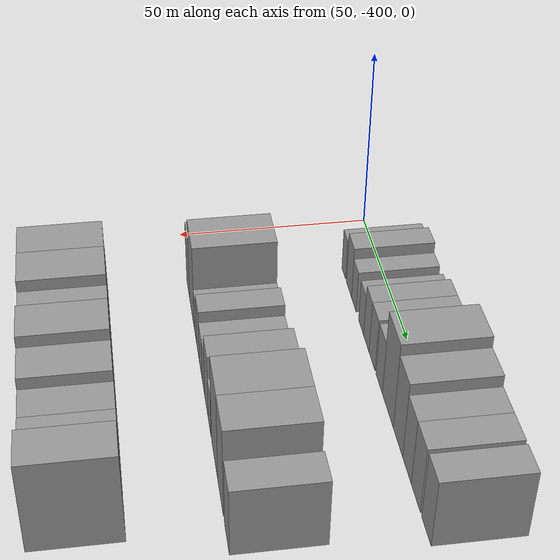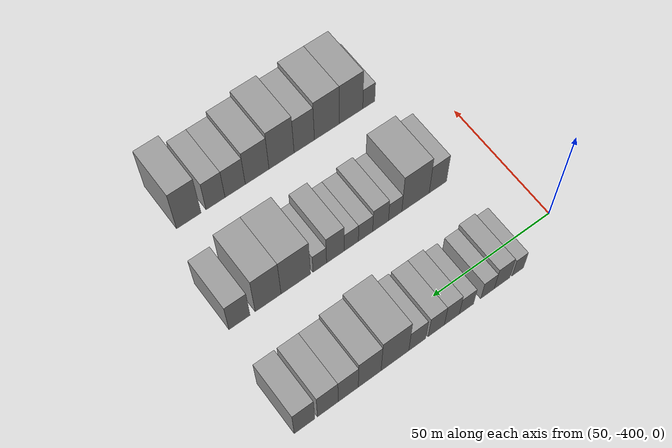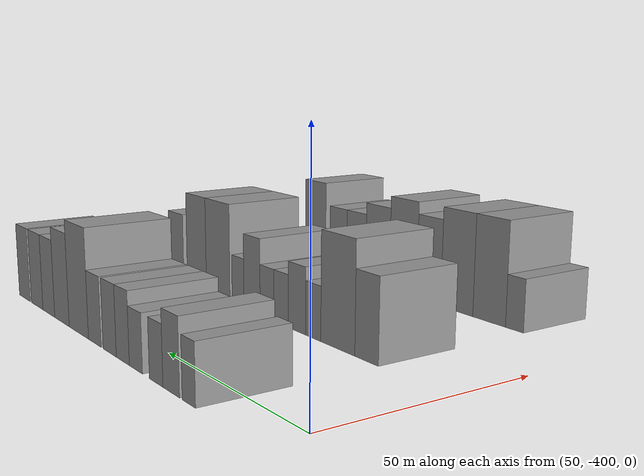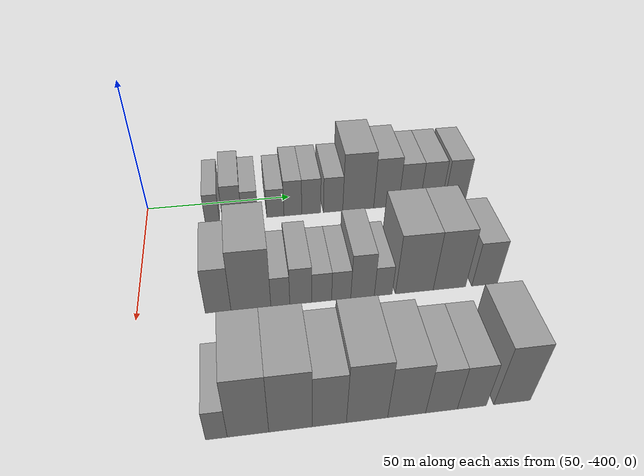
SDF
<sdf version="1.6">
 <world name="default">
  <model name="building_1">
   <static>1</static>
   <pose>50.0000 -377.5273 0 0.000000 0.000000 0.000000</pose>
   <link name="link">
    <pose>0 0 6.00 0 0 0</pose>
    <collision name="collision"><geometry><box><size>20.0000 4.9454 12.0000</size></box></geometry></collision>
    <visual name="visual">
     <cast_shadows>0</cast_shadows>
     <geometry><box><size>20.0000 4.9454 12.0000</size></box></geometry>
     <material>
      <script>
       <uri>model://grey_wall/materials/scripts</uri>
       <uri>model://grey_wall/materials/textures</uri>
       <name>vrc/grey_wall</name>
      </script>
     </material>
    </visual>
   </link>
  </model>
  <model name="building_2">
   <static>1</static>
   <pose>50.0000 -370.7680 0 0.000000 0.000000 0.000000</pose>
   <link name="link">
    <pose>0 0 7.50 0 0 0</pose>
    <collision name="collision"><geometry><box><size>20.0000 6.5734 15.0000</size></box></geometry></collision>
    <visual name="visual">
     <cast_shadows>0</cast_shadows>
     <geometry><box><size>20.0000 6.5734 15.0000</size></box></geometry>
     <material>
      <script>
       <uri>model://grey_wall/materials/scripts</uri>
       <uri>model://grey_wall/materials/textures</uri>
       <name>vrc/grey_wall</name>
      </script>
     </material>
    </visual>
   </link>
  </model>
  <model name="building_3">
   <static>1</static>
   <pose>50.0000 -364.6494 0 0.000000 0.000000 0.000000</pose>
   <link name="link">
    <pose>0 0 6.00 0 0 0</pose>
    <collision name="collision"><geometry><box><size>20.0000 5.6638 12.0000</size></box></geometry></collision>
    <visual name="visual">
     <cast_shadows>0</cast_shadows>
     <geometry><box><size>20.0000 5.6638 12.0000</size></box></geometry>
     <material>
      <script>
       <uri>model://grey_wall/materials/scripts</uri>
       <uri>model://grey_wall/materials/textures</uri>
       <name>vrc/grey_wall</name>
      </script>
     </material>
    </visual>
   </link>
  </model>
  <model name="building_4">
   <static>1</static>
   <pose>50.0000 -355.8359 0 0.000000 0.000000 0.000000</pose>
   <link name="link">
    <pose>0 0 6.00 0 0 0</pose>
    <collision name="collision"><geometry><box><size>20.0000 5.9631 12.0000</size></box></geometry></collision>
    <visual name="visual">
     <cast_shadows>0</cast_shadows>
     <geometry><box><size>20.0000 5.9631 12.0000</size></box></geometry>
     <material>
      <script>
       <uri>model://grey_wall/materials/scripts</uri>
       <uri>model://grey_wall/materials/textures</uri>
       <name>vrc/grey_wall</name>
      </script>
     </material>
    </visual>
   </link>
  </model>
  <model name="building_5">
   <static>1</static>
   <pose>50.0000 -349.7534 0 0.000000 0.000000 0.000000</pose>
   <link name="link">
    <pose>0 0 7.50 0 0 0</pose>
    <collision name="collision"><geometry><box><size>20.0000 6.2020 15.0000</size></box></geometry></collision>
    <visual name="visual">
     <cast_shadows>0</cast_shadows>
     <geometry><box><size>20.0000 6.2020 15.0000</size></box></geometry>
     <material>
      <script>
       <uri>model://grey_wall/materials/scripts</uri>
       <uri>model://grey_wall/materials/textures</uri>
       <name>vrc/grey_wall</name>
      </script>
     </material>
    </visual>
   </link>
  </model>
  <model name="building_6">
   <static>1</static>
   <pose>50.0000 -343.3390 0 0.000000 0.000000 0.000000</pose>
   <link name="link">
    <pose>0 0 7.50 0 0 0</pose>
    <collision name="collision"><geometry><box><size>20.0000 6.6268 15.0000</size></box></geometry></collision>
    <visual name="visual">
     <cast_shadows>0</cast_shadows>
     <geometry><box><size>20.0000 6.6268 15.0000</size></box></geometry>
     <material>
      <script>
       <uri>model://grey_wall/materials/scripts</uri>
       <uri>model://grey_wall/materials/textures</uri>
       <name>vrc/grey_wall</name>
      </script>
     </material>
    </visual>
   </link>
  </model>
  <model name="building_7">
   <static>1</static>
   <pose>50.0000 -335.6102 0 0.000000 0.000000 0.000000</pose>
   <link name="link">
    <pose>0 0 7.50 0 0 0</pose>
    <collision name="collision"><geometry><box><size>20.0000 6.8309 15.0000</size></box></geometry></collision>
    <visual name="visual">
     <cast_shadows>0</cast_shadows>
     <geometry><box><size>20.0000 6.8309 15.0000</size></box></geometry>
     <material>
      <script>
       <uri>model://grey_wall/materials/scripts</uri>
       <uri>model://grey_wall/materials/textures</uri>
       <name>vrc/grey_wall</name>
      </script>
     </material>
    </visual>
   </link>
  </model>
  <model name="building_8">
   <static>1</static>
   <pose>50.0000 -326.6663 0 0.000000 0.000000 0.000000</pose>
   <link name="link">
    <pose>0 0 12.00 0 0 0</pose>
    <collision name="collision"><geometry><box><size>20.0000 11.0569 24.0000</size></box></geometry></collision>
    <visual name="visual">
     <cast_shadows>0</cast_shadows>
     <geometry><box><size>20.0000 11.0569 24.0000</size></box></geometry>
     <material>
      <script>
       <uri>model://grey_wall/materials/scripts</uri>
       <uri>model://grey_wall/materials/textures</uri>
       <name>vrc/grey_wall</name>
      </script>
     </material>
    </visual>
   </link>
  </model>
  <model name="building_9">
   <static>1</static>
   <pose>50.0000 -316.6502 0 0.000000 0.000000 0.000000</pose>
   <link name="link">
    <pose>0 0 10.50 0 0 0</pose>
    <collision name="collision"><geometry><box><size>20.0000 8.9752 21.0000</size></box></geometry></collision>
    <visual name="visual">
     <cast_shadows>0</cast_shadows>
     <geometry><box><size>20.0000 8.9752 21.0000</size></box></geometry>
     <material>
      <script>
       <uri>model://grey_wall/materials/scripts</uri>
       <uri>model://grey_wall/materials/textures</uri>
       <name>vrc/grey_wall</name>
      </script>
     </material>
    </visual>
   </link>
  </model>
  <model name="building_10">
   <static>1</static>
   <pose>50.0000 -308.2696 0 0.000000 0.000000 0.000000</pose>
   <link name="link">
    <pose>0 0 9.00 0 0 0</pose>
    <collision name="collision"><geometry><box><size>20.0000 7.7861 18.0000</size></box></geometry></collision>
    <visual name="visual">
     <cast_shadows>0</cast_shadows>
     <geometry><box><size>20.0000 7.7861 18.0000</size></box></geometry>
     <material>
      <script>
       <uri>model://grey_wall/materials/scripts</uri>
       <uri>model://grey_wall/materials/textures</uri>
       <name>vrc/grey_wall</name>
      </script>
     </material>
    </visual>
   </link>
  </model>
  <model name="building_11">
   <static>1</static>
   <pose>50.0000 -300.3896 0 0.000000 0.000000 0.000000</pose>
   <link name="link">
    <pose>0 0 9.00 0 0 0</pose>
    <collision name="collision"><geometry><box><size>20.0000 7.9738 18.0000</size></box></geometry></collision>
    <visual name="visual">
     <cast_shadows>0</cast_shadows>
     <geometry><box><size>20.0000 7.9738 18.0000</size></box></geometry>
     <material>
      <script>
       <uri>model://grey_wall/materials/scripts</uri>
       <uri>model://grey_wall/materials/textures</uri>
       <name>vrc/grey_wall</name>
      </script>
     </material>
    </visual>
   </link>
  </model>
  <model name="building_12">
   <static>1</static>
   <pose>50.0000 -291.4953 0 0.000000 0.000000 0.000000</pose>
   <link name="link">
    <pose>0 0 9.00 0 0 0</pose>
    <collision name="collision"><geometry><box><size>20.0000 7.8147 18.0000</size></box></geometry></collision>
    <visual name="visual">
     <cast_shadows>0</cast_shadows>
     <geometry><box><size>20.0000 7.8147 18.0000</size></box></geometry>
     <material>
      <script>
       <uri>model://grey_wall/materials/scripts</uri>
       <uri>model://grey_wall/materials/textures</uri>
       <name>vrc/grey_wall</name>
      </script>
     </material>
    </visual>
   </link>
  </model>
  <model name="building_88">
   <static>1</static>
   <pose>90.0000 -376.2433 0 0.000000 0.000000 0.000000</pose>
   <link name="link">
    <pose>0 0 9.00 0 0 0</pose>
    <collision name="collision"><geometry><box><size>20.0000 7.5133 18.0000</size></box></geometry></collision>
    <visual name="visual">
     <cast_shadows>0</cast_shadows>
     <geometry><box><size>20.0000 7.5133 18.0000</size></box></geometry>
     <material>
      <script>
       <uri>model://grey_wall/materials/scripts</uri>
       <uri>model://grey_wall/materials/textures</uri>
       <name>vrc/grey_wall</name>
      </script>
     </material>
    </visual>
   </link>
  </model>
  <model name="building_89">
   <static>1</static>
   <pose>90.0000 -366.6029 0 0.000000 0.000000 0.000000</pose>
   <link name="link">
    <pose>0 0 12.00 0 0 0</pose>
    <collision name="collision"><geometry><box><size>20.0000 11.7676 24.0000</size></box></geometry></collision>
    <visual name="visual">
     <cast_shadows>0</cast_shadows>
     <geometry><box><size>20.0000 11.7676 24.0000</size></box></geometry>
     <material>
      <script>
       <uri>model://grey_wall/materials/scripts</uri>
       <uri>model://grey_wall/materials/textures</uri>
       <name>vrc/grey_wall</name>
      </script>
     </material>
    </visual>
   </link>
  </model>
  <model name="building_90">
   <static>1</static>
   <pose>90.0000 -357.8911 0 0.000000 0.000000 0.000000</pose>
   <link name="link">
    <pose>0 0 6.00 0 0 0</pose>
    <collision name="collision"><geometry><box><size>20.0000 5.6561 12.0000</size></box></geometry></collision>
    <visual name="visual">
     <cast_shadows>0</cast_shadows>
     <geometry><box><size>20.0000 5.6561 12.0000</size></box></geometry>
     <material>
      <script>
       <uri>model://grey_wall/materials/scripts</uri>
       <uri>model://grey_wall/materials/textures</uri>
       <name>vrc/grey_wall</name>
      </script>
     </material>
    </visual>
   </link>
  </model>
  <model name="building_91">
   <static>1</static>
   <pose>90.0000 -351.7477 0 0.000000 0.000000 0.000000</pose>
   <link name="link">
    <pose>0 0 7.50 0 0 0</pose>
    <collision name="collision"><geometry><box><size>20.0000 6.6307 15.0000</size></box></geometry></collision>
    <visual name="visual">
     <cast_shadows>0</cast_shadows>
     <geometry><box><size>20.0000 6.6307 15.0000</size></box></geometry>
     <material>
      <script>
       <uri>model://grey_wall/materials/scripts</uri>
       <uri>model://grey_wall/materials/textures</uri>
       <name>vrc/grey_wall</name>
      </script>
     </material>
    </visual>
   </link>
  </model>
  <model name="building_92">
   <static>1</static>
   <pose>90.0000 -345.4500 0 0.000000 0.000000 0.000000</pose>
   <link name="link">
    <pose>0 0 6.00 0 0 0</pose>
    <collision name="collision"><geometry><box><size>20.0000 5.9646 12.0000</size></box></geometry></collision>
    <visual name="visual">
     <cast_shadows>0</cast_shadows>
     <geometry><box><size>20.0000 5.9646 12.0000</size></box></geometry>
     <material>
      <script>
       <uri>model://grey_wall/materials/scripts</uri>
       <uri>model://grey_wall/materials/textures</uri>
       <name>vrc/grey_wall</name>
      </script>
     </material>
    </visual>
   </link>
  </model>
  <model name="building_93">
   <static>1</static>
   <pose>90.0000 -339.5533 0 0.000000 0.000000 0.000000</pose>
   <link name="link">
    <pose>0 0 6.00 0 0 0</pose>
    <collision name="collision"><geometry><box><size>20.0000 5.8289 12.0000</size></box></geometry></collision>
    <visual name="visual">
     <cast_shadows>0</cast_shadows>
     <geometry><box><size>20.0000 5.8289 12.0000</size></box></geometry>
     <material>
      <script>
       <uri>model://grey_wall/materials/scripts</uri>
       <uri>model://grey_wall/materials/textures</uri>
       <name>vrc/grey_wall</name>
      </script>
     </material>
    </visual>
   </link>
  </model>
  <model name="building_94">
   <static>1</static>
   <pose>90.0000 -333.0238 0 0.000000 0.000000 0.000000</pose>
   <link name="link">
    <pose>0 0 9.00 0 0 0</pose>
    <collision name="collision"><geometry><box><size>20.0000 7.2301 18.0000</size></box></geometry></collision>
    <visual name="visual">
     <cast_shadows>0</cast_shadows>
     <geometry><box><size>20.0000 7.2301 18.0000</size></box></geometry>
     <material>
      <script>
       <uri>model://grey_wall/materials/scripts</uri>
       <uri>model://grey_wall/materials/textures</uri>
       <name>vrc/grey_wall</name>
      </script>
     </material>
    </visual>
   </link>
  </model>
  <model name="building_95">
   <static>1</static>
   <pose>90.0000 -326.6540 0 0.000000 0.000000 0.000000</pose>
   <link name="link">
    <pose>0 0 6.00 0 0 0</pose>
    <collision name="collision"><geometry><box><size>20.0000 5.5095 12.0000</size></box></geometry></collision>
    <visual name="visual">
     <cast_shadows>0</cast_shadows>
     <geometry><box><size>20.0000 5.5095 12.0000</size></box></geometry>
     <material>
      <script>
       <uri>model://grey_wall/materials/scripts</uri>
       <uri>model://grey_wall/materials/textures</uri>
       <name>vrc/grey_wall</name>
      </script>
     </material>
    </visual>
   </link>
  </model>
  <model name="building_96">
   <static>1</static>
   <pose>90.0000 -317.0012 0 0.000000 0.000000 0.000000</pose>
   <link name="link">
    <pose>0 0 12.00 0 0 0</pose>
    <collision name="collision"><geometry><box><size>20.0000 11.7960 24.0000</size></box></geometry></collision>
    <visual name="visual">
     <cast_shadows>0</cast_shadows>
     <geometry><box><size>20.0000 11.7960 24.0000</size></box></geometry>
     <material>
      <script>
       <uri>model://grey_wall/materials/scripts</uri>
       <uri>model://grey_wall/materials/textures</uri>
       <name>vrc/grey_wall</name>
      </script>
     </material>
    </visual>
   </link>
  </model>
  <model name="building_97">
   <static>1</static>
   <pose>90.0000 -305.9926 0 0.000000 0.000000 0.000000</pose>
   <link name="link">
    <pose>0 0 12.00 0 0 0</pose>
    <collision name="collision"><geometry><box><size>20.0000 10.2212 24.0000</size></box></geometry></collision>
    <visual name="visual">
     <cast_shadows>0</cast_shadows>
     <geometry><box><size>20.0000 10.2212 24.0000</size></box></geometry>
     <material>
      <script>
       <uri>model://grey_wall/materials/scripts</uri>
       <uri>model://grey_wall/materials/textures</uri>
       <name>vrc/grey_wall</name>
      </script>
     </material>
    </visual>
   </link>
  </model>
  <model name="building_98">
   <static>1</static>
   <pose>90.0000 -294.7908 0 0.000000 0.000000 0.000000</pose>
   <link name="link">
    <pose>0 0 9.00 0 0 0</pose>
    <collision name="collision"><geometry><box><size>20.0000 8.1825 18.0000</size></box></geometry></collision>
    <visual name="visual">
     <cast_shadows>0</cast_shadows>
     <geometry><box><size>20.0000 8.1825 18.0000</size></box></geometry>
     <material>
      <script>
       <uri>model://grey_wall/materials/scripts</uri>
       <uri>model://grey_wall/materials/textures</uri>
       <name>vrc/grey_wall</name>
      </script>
     </material>
    </visual>
   </link>
  </model>
  <model name="building_177">
   <static>1</static>
   <pose>130.0000 -377.3528 0 0.000000 0.000000 0.000000</pose>
   <link name="link">
    <pose>0 0 6.00 0 0 0</pose>
    <collision name="collision"><geometry><box><size>20.0000 5.2944 12.0000</size></box></geometry></collision>
    <visual name="visual">
     <cast_shadows>0</cast_shadows>
     <geometry><box><size>20.0000 5.2944 12.0000</size></box></geometry>
     <material>
      <script>
       <uri>model://grey_wall/materials/scripts</uri>
       <uri>model://grey_wall/materials/textures</uri>
       <name>vrc/grey_wall</name>
      </script>
     </material>
    </visual>
   </link>
  </model>
  <model name="building_178">
   <static>1</static>
   <pose>130.0000 -369.5994 0 0.000000 0.000000 0.000000</pose>
   <link name="link">
    <pose>0 0 12.00 0 0 0</pose>
    <collision name="collision"><geometry><box><size>20.0000 10.2124 24.0000</size></box></geometry></collision>
    <visual name="visual">
     <cast_shadows>0</cast_shadows>
     <geometry><box><size>20.0000 10.2124 24.0000</size></box></geometry>
     <material>
      <script>
       <uri>model://grey_wall/materials/scripts</uri>
       <uri>model://grey_wall/materials/textures</uri>
       <name>vrc/grey_wall</name>
      </script>
     </material>
    </visual>
   </link>
  </model>
  <model name="building_179">
   <static>1</static>
   <pose>130.0000 -359.0949 0 0.000000 0.000000 0.000000</pose>
   <link name="link">
    <pose>0 0 12.00 0 0 0</pose>
    <collision name="collision"><geometry><box><size>20.0000 10.7965 24.0000</size></box></geometry></collision>
    <visual name="visual">
     <cast_shadows>0</cast_shadows>
     <geometry><box><size>20.0000 10.7965 24.0000</size></box></geometry>
     <material>
      <script>
       <uri>model://grey_wall/materials/scripts</uri>
       <uri>model://grey_wall/materials/textures</uri>
       <name>vrc/grey_wall</name>
      </script>
     </material>
    </visual>
   </link>
  </model>
  <model name="building_180">
   <static>1</static>
   <pose>130.0000 -349.3701 0 0.000000 0.000000 0.000000</pose>
   <link name="link">
    <pose>0 0 10.50 0 0 0</pose>
    <collision name="collision"><geometry><box><size>20.0000 8.6531 21.0000</size></box></geometry></collision>
    <visual name="visual">
     <cast_shadows>0</cast_shadows>
     <geometry><box><size>20.0000 8.6531 21.0000</size></box></geometry>
     <material>
      <script>
       <uri>model://grey_wall/materials/scripts</uri>
       <uri>model://grey_wall/materials/textures</uri>
       <name>vrc/grey_wall</name>
      </script>
     </material>
    </visual>
   </link>
  </model>
  <model name="building_181">
   <static>1</static>
   <pose>130.0000 -339.7732 0 0.000000 0.000000 0.000000</pose>
   <link name="link">
    <pose>0 0 12.00 0 0 0</pose>
    <collision name="collision"><geometry><box><size>20.0000 10.5407 24.0000</size></box></geometry></collision>
    <visual name="visual">
     <cast_shadows>0</cast_shadows>
     <geometry><box><size>20.0000 10.5407 24.0000</size></box></geometry>
     <material>
      <script>
       <uri>model://grey_wall/materials/scripts</uri>
       <uri>model://grey_wall/materials/textures</uri>
       <name>vrc/grey_wall</name>
      </script>
     </material>
    </visual>
   </link>
  </model>
  <model name="building_182">
   <static>1</static>
   <pose>130.0000 -329.5832 0 0.000000 0.000000 0.000000</pose>
   <link name="link">
    <pose>0 0 10.50 0 0 0</pose>
    <collision name="collision"><geometry><box><size>20.0000 9.8393 21.0000</size></box></geometry></collision>
    <visual name="visual">
     <cast_shadows>0</cast_shadows>
     <geometry><box><size>20.0000 9.8393 21.0000</size></box></geometry>
     <material>
      <script>
       <uri>model://grey_wall/materials/scripts</uri>
       <uri>model://grey_wall/materials/textures</uri>
       <name>vrc/grey_wall</name>
      </script>
     </material>
    </visual>
   </link>
  </model>
  <model name="building_183">
   <static>1</static>
   <pose>130.0000 -320.5065 0 0.000000 0.000000 0.000000</pose>
   <link name="link">
    <pose>0 0 9.00 0 0 0</pose>
    <collision name="collision"><geometry><box><size>20.0000 8.3141 18.0000</size></box></geometry></collision>
    <visual name="visual">
     <cast_shadows>0</cast_shadows>
     <geometry><box><size>20.0000 8.3141 18.0000</size></box></geometry>
     <material>
      <script>
       <uri>model://grey_wall/materials/scripts</uri>
       <uri>model://grey_wall/materials/textures</uri>
       <name>vrc/grey_wall</name>
      </script>
     </material>
    </visual>
   </link>
  </model>
  <model name="building_184">
   <static>1</static>
   <pose>130.0000 -312.5033 0 0.000000 0.000000 0.000000</pose>
   <link name="link">
    <pose>0 0 9.00 0 0 0</pose>
    <collision name="collision"><geometry><box><size>20.0000 7.6923 18.0000</size></box></geometry></collision>
    <visual name="visual">
     <cast_shadows>0</cast_shadows>
     <geometry><box><size>20.0000 7.6923 18.0000</size></box></geometry>
     <material>
      <script>
       <uri>model://grey_wall/materials/scripts</uri>
       <uri>model://grey_wall/materials/textures</uri>
       <name>vrc/grey_wall</name>
      </script>
     </material>
    </visual>
   </link>
  </model>
  <model name="building_185">
   <static>1</static>
   <pose>130.0000 -301.7544 0 0.000000 0.000000 0.000000</pose>
   <link name="link">
    <pose>0 0 12.00 0 0 0</pose>
    <collision name="collision"><geometry><box><size>20.0000 9.8055 24.0000</size></box></geometry></collision>
    <visual name="visual">
     <cast_shadows>0</cast_shadows>
     <geometry><box><size>20.0000 9.8055 24.0000</size></box></geometry>
     <material>
      <script>
       <uri>model://grey_wall/materials/scripts</uri>
       <uri>model://grey_wall/materials/textures</uri>
       <name>vrc/grey_wall</name>
      </script>
     </material>
    </visual>
   </link>
  </model>
 </world>
</sdf>
